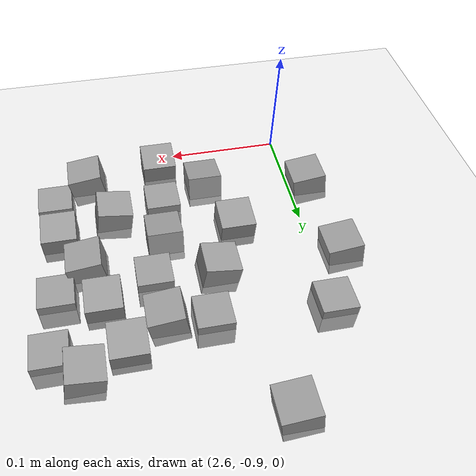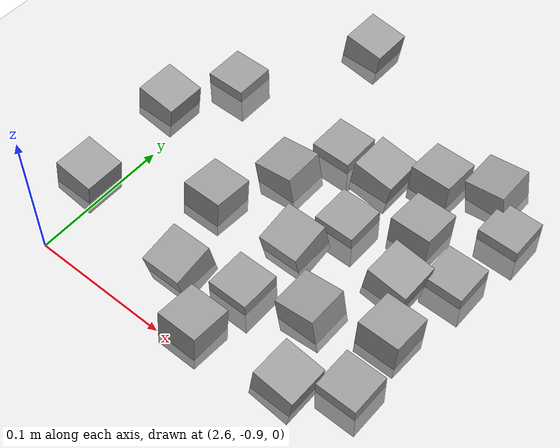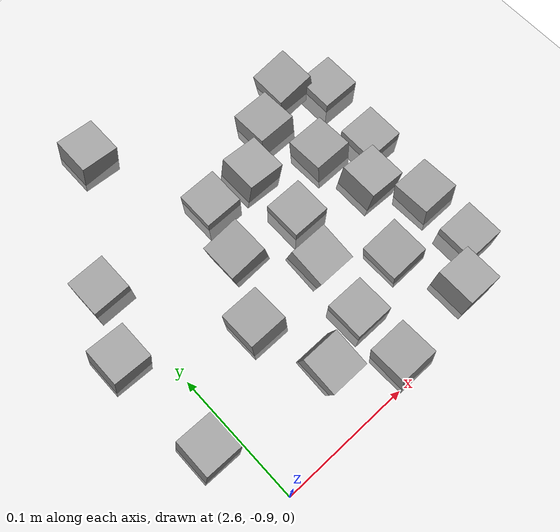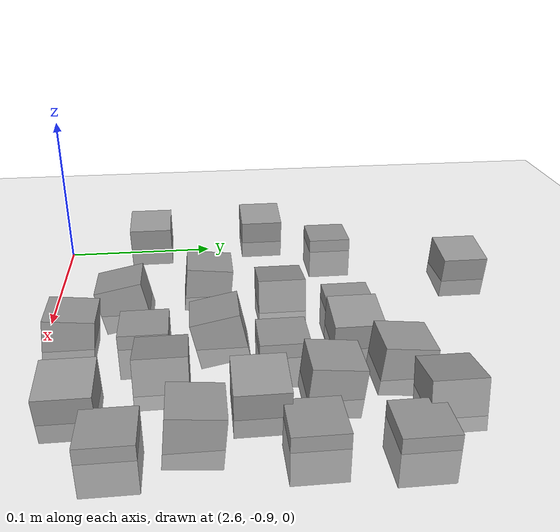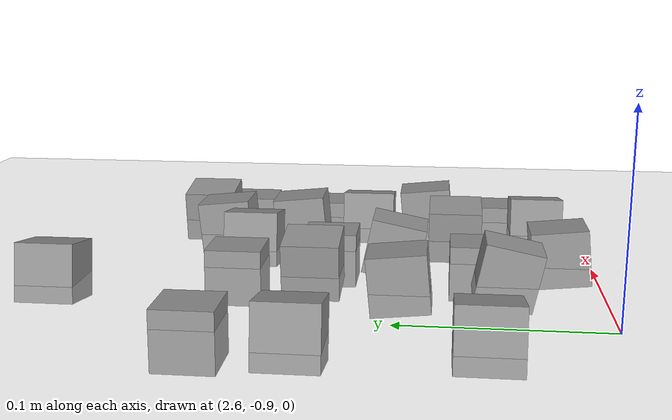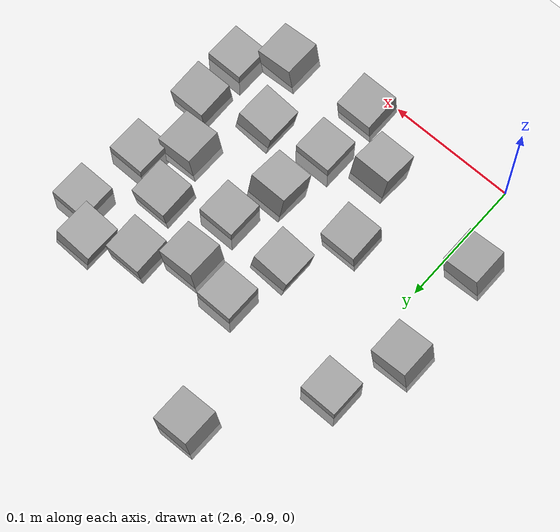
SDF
<sdf version="1.7">
 <world name="default">
  <model name="ground_plane">
   <static>1</static>
   <link name="link">
    <collision name="collision">
     <geometry><plane><normal>0 0 1</normal><size>100 100</size></plane></geometry>
     <surface><friction><ode><mu>100</mu><mu2>50</mu2></ode></friction></surface>
    </collision>
    <visual name="visual">
     <cast_shadows>0</cast_shadows>
     <geometry><plane><normal>0 0 1</normal><size>100 100</size></plane></geometry>
     <material>
      <script><uri>file://media/materials/scripts/gazebo.material</uri><name>Gazebo/Grey</name></script>
     </material>
    </visual>
   </link>
  </model>
  <model name="stone_road_6">
   <link name="link_0_clone_2_clone_2_clone_13_clone_clone_16_clone_19">
    <inertial>
     <mass>1</mass>
     <inertia>
      <ixx>0.166667</ixx>
      <ixy>0</ixy>
      <ixz>0</ixz>
      <iyy>0.166667</iyy>
      <iyz>0</iyz>
      <izz>0.166667</izz>
     </inertia>
    </inertial>
    <pose>0.219442 0.006622 -0.006222 0 -0 0</pose>
    <kinematic>1</kinematic>
    <visual name="visual">
     <geometry><box><size>0.03 0.03 0.03</size></box></geometry>
     <material>
      <lighting>1</lighting>
      <script><uri>file://media/materials/scripts/gazebo.material</uri><name>Gazebo/Grey</name></script>
      <shader type="pixel"><normal_map>__default__</normal_map></shader>
      <ambient>0.3 0.3 0.3 1</ambient>
      <diffuse>0.7 0.7 0.7 1</diffuse>
      <specular>0.01 0.01 0.01 1</specular>
      <emissive>0 0 0 1</emissive>
     </material>
    </visual>
    <collision name="collision">
     <geometry><box><size>0.03 0.03 0.03</size></box></geometry>
     <surface>
      <friction>
       <ode><mu>1</mu><mu2>1</mu2><fdir1>0 0 0</fdir1><slip1>0</slip1><slip2>0</slip2></ode>
       <torsional>
        <coefficient>1</coefficient>
        <patch_radius>0</patch_radius>
        <surface_radius>0</surface_radius>
        <use_patch_radius>1</use_patch_radius>
        <ode><slip>0</slip></ode>
       </torsional>
      </friction>
      <bounce><restitution_coefficient>0</restitution_coefficient><threshold>1e+06</threshold></bounce>
      <contact>
       <collide_without_contact>0</collide_without_contact>
       <collide_without_contact_bitmask>1</collide_without_contact_bitmask>
       <collide_bitmask>1</collide_bitmask>
       <ode>
        <soft_cfm>0</soft_cfm>
        <soft_erp>0.2</soft_erp>
        <kp>1e+13</kp>
        <kd>1</kd>
        <max_vel>0.01</max_vel>
        <min_depth>0</min_depth>
       </ode>
       <bullet>
        <split_impulse>1</split_impulse>
        <split_impulse_penetration_threshold>-0.01</split_impulse_penetration_threshold>
        <soft_cfm>0</soft_cfm>
        <soft_erp>0.2</soft_erp>
        <kp>1e+13</kp>
        <kd>1</kd>
       </bullet>
      </contact>
     </surface>
    </collision>
   </link>
   <link name="link_0_clone_2_clone_8">
    <inertial>
     <mass>1</mass>
     <inertia>
      <ixx>0.166667</ixx>
      <ixy>0</ixy>
      <ixz>0</ixz>
      <iyy>0.166667</iyy>
      <iyz>0</iyz>
      <izz>0.166667</izz>
     </inertia>
    </inertial>
    <pose>0.197388 -0.042712 0.003778 0 0.15 0</pose>
    <kinematic>1</kinematic>
    <visual name="visual">
     <geometry><box><size>0.03 0.03 0.03</size></box></geometry>
     <material>
      <lighting>1</lighting>
      <script><uri>file://media/materials/scripts/gazebo.material</uri><name>Gazebo/Grey</name></script>
      <shader type="pixel"><normal_map>__default__</normal_map></shader>
      <ambient>0.3 0.3 0.3 1</ambient>
      <diffuse>0.7 0.7 0.7 1</diffuse>
      <specular>0.01 0.01 0.01 1</specular>
      <emissive>0 0 0 1</emissive>
     </material>
    </visual>
    <collision name="collision">
     <geometry><box><size>0.03 0.03 0.03</size></box></geometry>
     <surface>
      <friction>
       <ode><mu>1</mu><mu2>1</mu2><fdir1>0 0 0</fdir1><slip1>0</slip1><slip2>0</slip2></ode>
       <torsional>
        <coefficient>1</coefficient>
        <patch_radius>0</patch_radius>
        <surface_radius>0</surface_radius>
        <use_patch_radius>1</use_patch_radius>
        <ode><slip>0</slip></ode>
       </torsional>
      </friction>
      <bounce><restitution_coefficient>0</restitution_coefficient><threshold>1e+06</threshold></bounce>
      <contact>
       <collide_without_contact>0</collide_without_contact>
       <collide_without_contact_bitmask>1</collide_without_contact_bitmask>
       <collide_bitmask>1</collide_bitmask>
       <ode>
        <soft_cfm>0</soft_cfm>
        <soft_erp>0.2</soft_erp>
        <kp>1e+13</kp>
        <kd>1</kd>
        <max_vel>0.01</max_vel>
        <min_depth>0</min_depth>
       </ode>
       <bullet>
        <split_impulse>1</split_impulse>
        <split_impulse_penetration_threshold>-0.01</split_impulse_penetration_threshold>
        <soft_cfm>0</soft_cfm>
        <soft_erp>0.2</soft_erp>
        <kp>1e+13</kp>
        <kd>1</kd>
       </bullet>
      </contact>
     </surface>
    </collision>
   </link>
   <static>0</static>
   <pose>2.379 -0.715905 -0 0 -0 0</pose>
  </model>
  <model name="stone_road_9">
   <link name="link_0_clone_2_clone_6">
    <inertial>
     <mass>1</mass>
     <inertia>
      <ixx>0.166667</ixx>
      <ixy>0</ixy>
      <ixz>0</ixz>
      <iyy>0.166667</iyy>
      <iyz>0</iyz>
      <izz>0.166667</izz>
     </inertia>
    </inertial>
    <pose>-0.087859 -0.263184 0.003778 0 0.15 0</pose>
    <kinematic>1</kinematic>
    <visual name="visual">
     <geometry><box><size>0.03 0.03 0.03</size></box></geometry>
     <material>
      <lighting>1</lighting>
      <script><uri>file://media/materials/scripts/gazebo.material</uri><name>Gazebo/Grey</name></script>
      <shader type="pixel"><normal_map>__default__</normal_map></shader>
      <ambient>0.3 0.3 0.3 1</ambient>
      <diffuse>0.7 0.7 0.7 1</diffuse>
      <specular>0.01 0.01 0.01 1</specular>
      <emissive>0 0 0 1</emissive>
     </material>
    </visual>
    <collision name="collision">
     <geometry><box><size>0.03 0.03 0.03</size></box></geometry>
     <surface>
      <friction>
       <ode><mu>1</mu><mu2>1</mu2><fdir1>0 0 0</fdir1><slip1>0</slip1><slip2>0</slip2></ode>
       <torsional>
        <coefficient>1</coefficient>
        <patch_radius>0</patch_radius>
        <surface_radius>0</surface_radius>
        <use_patch_radius>1</use_patch_radius>
        <ode><slip>0</slip></ode>
       </torsional>
      </friction>
      <bounce><restitution_coefficient>0</restitution_coefficient><threshold>1e+06</threshold></bounce>
      <contact>
       <collide_without_contact>0</collide_without_contact>
       <collide_without_contact_bitmask>1</collide_without_contact_bitmask>
       <collide_bitmask>1</collide_bitmask>
       <ode>
        <soft_cfm>0</soft_cfm>
        <soft_erp>0.2</soft_erp>
        <kp>1e+13</kp>
        <kd>1</kd>
        <max_vel>0.01</max_vel>
        <min_depth>0</min_depth>
       </ode>
       <bullet>
        <split_impulse>1</split_impulse>
        <split_impulse_penetration_threshold>-0.01</split_impulse_penetration_threshold>
        <soft_cfm>0</soft_cfm>
        <soft_erp>0.2</soft_erp>
        <kp>1e+13</kp>
        <kd>1</kd>
       </bullet>
      </contact>
     </surface>
    </collision>
   </link>
   <static>0</static>
   <pose>2.743 -0.362549 -0 0 -0 0</pose>
  </model>
  <model name="stone_road_12">
   <link name="link_0">
    <inertial>
     <mass>1</mass>
     <inertia>
      <ixx>0.166667</ixx>
      <ixy>0</ixy>
      <ixz>0</ixz>
      <iyy>0.166667</iyy>
      <iyz>0</iyz>
      <izz>0.166667</izz>
     </inertia>
    </inertial>
    <pose>-0.171827 0.03973 0.003778 0.2 -0 0</pose>
    <kinematic>1</kinematic>
    <visual name="visual">
     <geometry><box><size>0.03 0.03 0.03</size></box></geometry>
     <material>
      <lighting>1</lighting>
      <script><uri>file://media/materials/scripts/gazebo.material</uri><name>Gazebo/Grey</name></script>
      <shader type="pixel"><normal_map>__default__</normal_map></shader>
      <ambient>0.3 0.3 0.3 1</ambient>
      <diffuse>0.7 0.7 0.7 1</diffuse>
      <specular>0.01 0.01 0.01 1</specular>
      <emissive>0 0 0 1</emissive>
     </material>
    </visual>
    <collision name="collision">
     <geometry><box><size>0.03 0.03 0.03</size></box></geometry>
     <surface>
      <friction>
       <ode><mu>1</mu><mu2>1</mu2><fdir1>0 0 0</fdir1><slip1>0</slip1><slip2>0</slip2></ode>
       <torsional>
        <coefficient>1</coefficient>
        <patch_radius>0</patch_radius>
        <surface_radius>0</surface_radius>
        <use_patch_radius>1</use_patch_radius>
        <ode><slip>0</slip></ode>
       </torsional>
      </friction>
      <bounce><restitution_coefficient>0</restitution_coefficient><threshold>1e+06</threshold></bounce>
      <contact>
       <collide_without_contact>0</collide_without_contact>
       <collide_without_contact_bitmask>1</collide_without_contact_bitmask>
       <collide_bitmask>1</collide_bitmask>
       <ode>
        <soft_cfm>0</soft_cfm>
        <soft_erp>0.2</soft_erp>
        <kp>1e+13</kp>
        <kd>1</kd>
        <max_vel>0.01</max_vel>
        <min_depth>0</min_depth>
       </ode>
       <bullet>
        <split_impulse>1</split_impulse>
        <split_impulse_penetration_threshold>-0.01</split_impulse_penetration_threshold>
        <soft_cfm>0</soft_cfm>
        <soft_erp>0.2</soft_erp>
        <kp>1e+13</kp>
        <kd>1</kd>
       </bullet>
      </contact>
     </surface>
    </collision>
   </link>
   <link name="link_0_clone_2">
    <inertial>
     <mass>1</mass>
     <inertia>
      <ixx>0.166667</ixx>
      <ixy>0</ixy>
      <ixz>0</ixz>
      <iyy>0.166667</iyy>
      <iyz>0</iyz>
      <izz>0.166667</izz>
     </inertia>
    </inertial>
    <pose>-0.065685 0.018139 0.003778 0 0.15 0</pose>
    <kinematic>1</kinematic>
    <visual name="visual">
     <geometry><box><size>0.03 0.03 0.03</size></box></geometry>
     <material>
      <lighting>1</lighting>
      <script><uri>file://media/materials/scripts/gazebo.material</uri><name>Gazebo/Grey</name></script>
      <shader type="pixel"><normal_map>__default__</normal_map></shader>
      <ambient>0.3 0.3 0.3 1</ambient>
      <diffuse>0.7 0.7 0.7 1</diffuse>
      <specular>0.01 0.01 0.01 1</specular>
      <emissive>0 0 0 1</emissive>
     </material>
    </visual>
    <collision name="collision">
     <geometry><box><size>0.03 0.03 0.03</size></box></geometry>
     <surface>
      <friction>
       <ode><mu>1</mu><mu2>1</mu2><fdir1>0 0 0</fdir1><slip1>0</slip1><slip2>0</slip2></ode>
       <torsional>
        <coefficient>1</coefficient>
        <patch_radius>0</patch_radius>
        <surface_radius>0</surface_radius>
        <use_patch_radius>1</use_patch_radius>
        <ode><slip>0</slip></ode>
       </torsional>
      </friction>
      <bounce><restitution_coefficient>0</restitution_coefficient><threshold>1e+06</threshold></bounce>
      <contact>
       <collide_without_contact>0</collide_without_contact>
       <collide_without_contact_bitmask>1</collide_without_contact_bitmask>
       <collide_bitmask>1</collide_bitmask>
       <ode>
        <soft_cfm>0</soft_cfm>
        <soft_erp>0.2</soft_erp>
        <kp>1e+13</kp>
        <kd>1</kd>
        <max_vel>0.01</max_vel>
        <min_depth>0</min_depth>
       </ode>
       <bullet>
        <split_impulse>1</split_impulse>
        <split_impulse_penetration_threshold>-0.01</split_impulse_penetration_threshold>
        <soft_cfm>0</soft_cfm>
        <soft_erp>0.2</soft_erp>
        <kp>1e+13</kp>
        <kd>1</kd>
       </bullet>
      </contact>
     </surface>
    </collision>
   </link>
   <link name="link_0_clone_2_clone_2_clone_1">
    <inertial>
     <mass>1</mass>
     <inertia>
      <ixx>0.166667</ixx>
      <ixy>0</ixy>
      <ixz>0</ixz>
      <iyy>0.166667</iyy>
      <iyz>0</iyz>
      <izz>0.166667</izz>
     </inertia>
    </inertial>
    <pose>-0.085624 0.065625 0.003778 0 -0.15 0</pose>
    <kinematic>1</kinematic>
    <visual name="visual">
     <geometry><box><size>0.03 0.03 0.03</size></box></geometry>
     <material>
      <lighting>1</lighting>
      <script><uri>file://media/materials/scripts/gazebo.material</uri><name>Gazebo/Grey</name></script>
      <shader type="pixel"><normal_map>__default__</normal_map></shader>
      <ambient>0.3 0.3 0.3 1</ambient>
      <diffuse>0.7 0.7 0.7 1</diffuse>
      <specular>0.01 0.01 0.01 1</specular>
      <emissive>0 0 0 1</emissive>
     </material>
    </visual>
    <collision name="collision">
     <geometry><box><size>0.03 0.03 0.03</size></box></geometry>
     <surface>
      <friction>
       <ode><mu>1</mu><mu2>1</mu2><fdir1>0 0 0</fdir1><slip1>0</slip1><slip2>0</slip2></ode>
       <torsional>
        <coefficient>1</coefficient>
        <patch_radius>0</patch_radius>
        <surface_radius>0</surface_radius>
        <use_patch_radius>1</use_patch_radius>
        <ode><slip>0</slip></ode>
       </torsional>
      </friction>
      <bounce><restitution_coefficient>0</restitution_coefficient><threshold>1e+06</threshold></bounce>
      <contact>
       <collide_without_contact>0</collide_without_contact>
       <collide_without_contact_bitmask>1</collide_without_contact_bitmask>
       <collide_bitmask>1</collide_bitmask>
       <ode>
        <soft_cfm>0</soft_cfm>
        <soft_erp>0.2</soft_erp>
        <kp>1e+13</kp>
        <kd>1</kd>
        <max_vel>0.01</max_vel>
        <min_depth>0</min_depth>
       </ode>
       <bullet>
        <split_impulse>1</split_impulse>
        <split_impulse_penetration_threshold>-0.01</split_impulse_penetration_threshold>
        <soft_cfm>0</soft_cfm>
        <soft_erp>0.2</soft_erp>
        <kp>1e+13</kp>
        <kd>1</kd>
       </bullet>
      </contact>
     </surface>
    </collision>
   </link>
   <link name="link_0_clone_2_clone_2_clone_11">
    <inertial>
     <mass>1</mass>
     <inertia>
      <ixx>0.166667</ixx>
      <ixy>0</ixy>
      <ixz>0</ixz>
      <iyy>0.166667</iyy>
      <iyz>0</iyz>
      <izz>0.166667</izz>
     </inertia>
    </inertial>
    <pose>-0.050382 0.216558 0.003778 0 -0.15 0</pose>
    <kinematic>1</kinematic>
    <visual name="visual">
     <geometry><box><size>0.03 0.03 0.03</size></box></geometry>
     <material>
      <lighting>1</lighting>
      <script><uri>file://media/materials/scripts/gazebo.material</uri><name>Gazebo/Grey</name></script>
      <shader type="pixel"><normal_map>__default__</normal_map></shader>
      <ambient>0.3 0.3 0.3 1</ambient>
      <diffuse>0.7 0.7 0.7 1</diffuse>
      <specular>0.01 0.01 0.01 1</specular>
      <emissive>0 0 0 1</emissive>
     </material>
    </visual>
    <collision name="collision">
     <geometry><box><size>0.03 0.03 0.03</size></box></geometry>
     <surface>
      <friction>
       <ode><mu>1</mu><mu2>1</mu2><fdir1>0 0 0</fdir1><slip1>0</slip1><slip2>0</slip2></ode>
       <torsional>
        <coefficient>1</coefficient>
        <patch_radius>0</patch_radius>
        <surface_radius>0</surface_radius>
        <use_patch_radius>1</use_patch_radius>
        <ode><slip>0</slip></ode>
       </torsional>
      </friction>
      <bounce><restitution_coefficient>0</restitution_coefficient><threshold>1e+06</threshold></bounce>
      <contact>
       <collide_without_contact>0</collide_without_contact>
       <collide_without_contact_bitmask>1</collide_without_contact_bitmask>
       <collide_bitmask>1</collide_bitmask>
       <ode>
        <soft_cfm>0</soft_cfm>
        <soft_erp>0.2</soft_erp>
        <kp>1e+13</kp>
        <kd>1</kd>
        <max_vel>0.01</max_vel>
        <min_depth>0</min_depth>
       </ode>
       <bullet>
        <split_impulse>1</split_impulse>
        <split_impulse_penetration_threshold>-0.01</split_impulse_penetration_threshold>
        <soft_cfm>0</soft_cfm>
        <soft_erp>0.2</soft_erp>
        <kp>1e+13</kp>
        <kd>1</kd>
       </bullet>
      </contact>
     </surface>
    </collision>
   </link>
   <link name="link_0_clone_2_clone_2_clone_13_clone_clone_13">
    <inertial>
     <mass>1</mass>
     <inertia>
      <ixx>0.166667</ixx>
      <ixy>0</ixy>
      <ixz>0</ixz>
      <iyy>0.166667</iyy>
      <iyz>0</iyz>
      <izz>0.166667</izz>
     </inertia>
    </inertial>
    <pose>-0.069861 0.157394 0.003778 -0.1 0 0</pose>
    <kinematic>1</kinematic>
    <visual name="visual">
     <geometry><box><size>0.03 0.03 0.03</size></box></geometry>
     <material>
      <lighting>1</lighting>
      <script><uri>file://media/materials/scripts/gazebo.material</uri><name>Gazebo/Grey</name></script>
      <shader type="pixel"><normal_map>__default__</normal_map></shader>
      <ambient>0.3 0.3 0.3 1</ambient>
      <diffuse>0.7 0.7 0.7 1</diffuse>
      <specular>0.01 0.01 0.01 1</specular>
      <emissive>0 0 0 1</emissive>
     </material>
    </visual>
    <collision name="collision">
     <geometry><box><size>0.03 0.03 0.03</size></box></geometry>
     <surface>
      <friction>
       <ode><mu>1</mu><mu2>1</mu2><fdir1>0 0 0</fdir1><slip1>0</slip1><slip2>0</slip2></ode>
       <torsional>
        <coefficient>1</coefficient>
        <patch_radius>0</patch_radius>
        <surface_radius>0</surface_radius>
        <use_patch_radius>1</use_patch_radius>
        <ode><slip>0</slip></ode>
       </torsional>
      </friction>
      <bounce><restitution_coefficient>0</restitution_coefficient><threshold>1e+06</threshold></bounce>
      <contact>
       <collide_without_contact>0</collide_without_contact>
       <collide_without_contact_bitmask>1</collide_without_contact_bitmask>
       <collide_bitmask>1</collide_bitmask>
       <ode>
        <soft_cfm>0</soft_cfm>
        <soft_erp>0.2</soft_erp>
        <kp>1e+13</kp>
        <kd>1</kd>
        <max_vel>0.01</max_vel>
        <min_depth>0</min_depth>
       </ode>
       <bullet>
        <split_impulse>1</split_impulse>
        <split_impulse_penetration_threshold>-0.01</split_impulse_penetration_threshold>
        <soft_cfm>0</soft_cfm>
        <soft_erp>0.2</soft_erp>
        <kp>1e+13</kp>
        <kd>1</kd>
       </bullet>
      </contact>
     </surface>
    </collision>
   </link>
   <link name="link_0_clone_2_clone_2_clone_13_clone_clone_14">
    <inertial>
     <mass>1</mass>
     <inertia>
      <ixx>0.166667</ixx>
      <ixy>0</ixy>
      <ixz>0</ixz>
      <iyy>0.166667</iyy>
      <iyz>0</iyz>
      <izz>0.166667</izz>
     </inertia>
    </inertial>
    <pose>-0.190578 0.093923 0.003778 -0.1 0 0</pose>
    <kinematic>1</kinematic>
    <visual name="visual">
     <geometry><box><size>0.03 0.03 0.03</size></box></geometry>
     <material>
      <lighting>1</lighting>
      <script><uri>file://media/materials/scripts/gazebo.material</uri><name>Gazebo/Grey</name></script>
      <shader type="pixel"><normal_map>__default__</normal_map></shader>
      <ambient>0.3 0.3 0.3 1</ambient>
      <diffuse>0.7 0.7 0.7 1</diffuse>
      <specular>0.01 0.01 0.01 1</specular>
      <emissive>0 0 0 1</emissive>
     </material>
    </visual>
    <collision name="collision">
     <geometry><box><size>0.03 0.03 0.03</size></box></geometry>
     <surface>
      <friction>
       <ode><mu>1</mu><mu2>1</mu2><fdir1>0 0 0</fdir1><slip1>0</slip1><slip2>0</slip2></ode>
       <torsional>
        <coefficient>1</coefficient>
        <patch_radius>0</patch_radius>
        <surface_radius>0</surface_radius>
        <use_patch_radius>1</use_patch_radius>
        <ode><slip>0</slip></ode>
       </torsional>
      </friction>
      <bounce><restitution_coefficient>0</restitution_coefficient><threshold>1e+06</threshold></bounce>
      <contact>
       <collide_without_contact>0</collide_without_contact>
       <collide_without_contact_bitmask>1</collide_without_contact_bitmask>
       <collide_bitmask>1</collide_bitmask>
       <ode>
        <soft_cfm>0</soft_cfm>
        <soft_erp>0.2</soft_erp>
        <kp>1e+13</kp>
        <kd>1</kd>
        <max_vel>0.01</max_vel>
        <min_depth>0</min_depth>
       </ode>
       <bullet>
        <split_impulse>1</split_impulse>
        <split_impulse_penetration_threshold>-0.01</split_impulse_penetration_threshold>
        <soft_cfm>0</soft_cfm>
        <soft_erp>0.2</soft_erp>
        <kp>1e+13</kp>
        <kd>1</kd>
       </bullet>
      </contact>
     </surface>
    </collision>
   </link>
   <link name="link_0_clone_2_clone_2_clone_13_clone_clone_15">
    <inertial>
     <mass>1</mass>
     <inertia>
      <ixx>0.166667</ixx>
      <ixy>0</ixy>
      <ixz>0</ixz>
      <iyy>0.166667</iyy>
      <iyz>0</iyz>
      <izz>0.166667</izz>
     </inertia>
    </inertial>
    <pose>-0.084893 0.19984 0.003778 -0.1 0 0</pose>
    <kinematic>1</kinematic>
    <visual name="visual">
     <geometry><box><size>0.03 0.03 0.03</size></box></geometry>
     <material>
      <lighting>1</lighting>
      <script><uri>file://media/materials/scripts/gazebo.material</uri><name>Gazebo/Grey</name></script>
      <shader type="pixel"><normal_map>__default__</normal_map></shader>
      <ambient>0.3 0.3 0.3 1</ambient>
      <diffuse>0.7 0.7 0.7 1</diffuse>
      <specular>0.01 0.01 0.01 1</specular>
      <emissive>0 0 0 1</emissive>
     </material>
    </visual>
    <collision name="collision">
     <geometry><box><size>0.03 0.03 0.03</size></box></geometry>
     <surface>
      <friction>
       <ode><mu>1</mu><mu2>1</mu2><fdir1>0 0 0</fdir1><slip1>0</slip1><slip2>0</slip2></ode>
       <torsional>
        <coefficient>1</coefficient>
        <patch_radius>0</patch_radius>
        <surface_radius>0</surface_radius>
        <use_patch_radius>1</use_patch_radius>
        <ode><slip>0</slip></ode>
       </torsional>
      </friction>
      <bounce><restitution_coefficient>0</restitution_coefficient><threshold>1e+06</threshold></bounce>
      <contact>
       <collide_without_contact>0</collide_without_contact>
       <collide_without_contact_bitmask>1</collide_without_contact_bitmask>
       <collide_bitmask>1</collide_bitmask>
       <ode>
        <soft_cfm>0</soft_cfm>
        <soft_erp>0.2</soft_erp>
        <kp>1e+13</kp>
        <kd>1</kd>
        <max_vel>0.01</max_vel>
        <min_depth>0</min_depth>
       </ode>
       <bullet>
        <split_impulse>1</split_impulse>
        <split_impulse_penetration_threshold>-0.01</split_impulse_penetration_threshold>
        <soft_cfm>0</soft_cfm>
        <soft_erp>0.2</soft_erp>
        <kp>1e+13</kp>
        <kd>1</kd>
       </bullet>
      </contact>
     </surface>
    </collision>
   </link>
   <link name="link_0_clone_2_clone_2_clone_13_clone_clone_16_clone_2">
    <inertial>
     <mass>1</mass>
     <inertia>
      <ixx>0.166667</ixx>
      <ixy>0</ixy>
      <ixz>0</ixz>
      <iyy>0.166667</iyy>
      <iyz>0</iyz>
      <izz>0.166667</izz>
     </inertia>
    </inertial>
    <pose>-0.035128 0.040728 -0.006222 0 -0 0</pose>
    <kinematic>1</kinematic>
    <visual name="visual">
     <geometry><box><size>0.03 0.03 0.03</size></box></geometry>
     <material>
      <lighting>1</lighting>
      <script><uri>file://media/materials/scripts/gazebo.material</uri><name>Gazebo/Grey</name></script>
      <shader type="pixel"><normal_map>__default__</normal_map></shader>
      <ambient>0.3 0.3 0.3 1</ambient>
      <diffuse>0.7 0.7 0.7 1</diffuse>
      <specular>0.01 0.01 0.01 1</specular>
      <emissive>0 0 0 1</emissive>
     </material>
    </visual>
    <collision name="collision">
     <geometry><box><size>0.03 0.03 0.03</size></box></geometry>
     <surface>
      <friction>
       <ode><mu>1</mu><mu2>1</mu2><fdir1>0 0 0</fdir1><slip1>0</slip1><slip2>0</slip2></ode>
       <torsional>
        <coefficient>1</coefficient>
        <patch_radius>0</patch_radius>
        <surface_radius>0</surface_radius>
        <use_patch_radius>1</use_patch_radius>
        <ode><slip>0</slip></ode>
       </torsional>
      </friction>
      <bounce><restitution_coefficient>0</restitution_coefficient><threshold>1e+06</threshold></bounce>
      <contact>
       <collide_without_contact>0</collide_without_contact>
       <collide_without_contact_bitmask>1</collide_without_contact_bitmask>
       <collide_bitmask>1</collide_bitmask>
       <ode>
        <soft_cfm>0</soft_cfm>
        <soft_erp>0.2</soft_erp>
        <kp>1e+13</kp>
        <kd>1</kd>
        <max_vel>0.01</max_vel>
        <min_depth>0</min_depth>
       </ode>
       <bullet>
        <split_impulse>1</split_impulse>
        <split_impulse_penetration_threshold>-0.01</split_impulse_penetration_threshold>
        <soft_cfm>0</soft_cfm>
        <soft_erp>0.2</soft_erp>
        <kp>1e+13</kp>
        <kd>1</kd>
       </bullet>
      </contact>
     </surface>
    </collision>
   </link>
   <link name="link_0_clone_2_clone_2_clone_13_clone_clone_16_clone_21">
    <inertial>
     <mass>1</mass>
     <inertia>
      <ixx>0.166667</ixx>
      <ixy>0</ixy>
      <ixz>0</ixz>
      <iyy>0.166667</iyy>
      <iyz>0</iyz>
      <izz>0.166667</izz>
     </inertia>
    </inertial>
    <pose>-0.032398 0.142589 -0.006222 0 -0 0</pose>
    <kinematic>1</kinematic>
    <visual name="visual">
     <geometry><box><size>0.03 0.03 0.03</size></box></geometry>
     <material>
      <lighting>1</lighting>
      <script><uri>file://media/materials/scripts/gazebo.material</uri><name>Gazebo/Grey</name></script>
      <shader type="pixel"><normal_map>__default__</normal_map></shader>
      <ambient>0.3 0.3 0.3 1</ambient>
      <diffuse>0.7 0.7 0.7 1</diffuse>
      <specular>0.01 0.01 0.01 1</specular>
      <emissive>0 0 0 1</emissive>
     </material>
    </visual>
    <collision name="collision">
     <geometry><box><size>0.03 0.03 0.03</size></box></geometry>
     <surface>
      <friction>
       <ode><mu>1</mu><mu2>1</mu2><fdir1>0 0 0</fdir1><slip1>0</slip1><slip2>0</slip2></ode>
       <torsional>
        <coefficient>1</coefficient>
        <patch_radius>0</patch_radius>
        <surface_radius>0</surface_radius>
        <use_patch_radius>1</use_patch_radius>
        <ode><slip>0</slip></ode>
       </torsional>
      </friction>
      <bounce><restitution_coefficient>0</restitution_coefficient><threshold>1e+06</threshold></bounce>
      <contact>
       <collide_without_contact>0</collide_without_contact>
       <collide_without_contact_bitmask>1</collide_without_contact_bitmask>
       <collide_bitmask>1</collide_bitmask>
       <ode>
        <soft_cfm>0</soft_cfm>
        <soft_erp>0.2</soft_erp>
        <kp>1e+13</kp>
        <kd>1</kd>
        <max_vel>0.01</max_vel>
        <min_depth>0</min_depth>
       </ode>
       <bullet>
        <split_impulse>1</split_impulse>
        <split_impulse_penetration_threshold>-0.01</split_impulse_penetration_threshold>
        <soft_cfm>0</soft_cfm>
        <soft_erp>0.2</soft_erp>
        <kp>1e+13</kp>
        <kd>1</kd>
       </bullet>
      </contact>
     </surface>
    </collision>
   </link>
   <link name="link_0_clone_2_clone_2_clone_13_clone_clone_16_clone_22">
    <inertial>
     <mass>1</mass>
     <inertia>
      <ixx>0.166667</ixx>
      <ixy>0</ixy>
      <ixz>0</ixz>
      <iyy>0.166667</iyy>
      <iyz>0</iyz>
      <izz>0.166667</izz>
     </inertia>
    </inertial>
    <pose>-0.025872 0.194724 -0.006222 0 -0 0</pose>
    <kinematic>1</kinematic>
    <visual name="visual">
     <geometry><box><size>0.03 0.03 0.03</size></box></geometry>
     <material>
      <lighting>1</lighting>
      <script><uri>file://media/materials/scripts/gazebo.material</uri><name>Gazebo/Grey</name></script>
      <shader type="pixel"><normal_map>__default__</normal_map></shader>
      <ambient>0.3 0.3 0.3 1</ambient>
      <diffuse>0.7 0.7 0.7 1</diffuse>
      <specular>0.01 0.01 0.01 1</specular>
      <emissive>0 0 0 1</emissive>
     </material>
    </visual>
    <collision name="collision">
     <geometry><box><size>0.03 0.03 0.03</size></box></geometry>
     <surface>
      <friction>
       <ode><mu>1</mu><mu2>1</mu2><fdir1>0 0 0</fdir1><slip1>0</slip1><slip2>0</slip2></ode>
       <torsional>
        <coefficient>1</coefficient>
        <patch_radius>0</patch_radius>
        <surface_radius>0</surface_radius>
        <use_patch_radius>1</use_patch_radius>
        <ode><slip>0</slip></ode>
       </torsional>
      </friction>
      <bounce><restitution_coefficient>0</restitution_coefficient><threshold>1e+06</threshold></bounce>
      <contact>
       <collide_without_contact>0</collide_without_contact>
       <collide_without_contact_bitmask>1</collide_without_contact_bitmask>
       <collide_bitmask>1</collide_bitmask>
       <ode>
        <soft_cfm>0</soft_cfm>
        <soft_erp>0.2</soft_erp>
        <kp>1e+13</kp>
        <kd>1</kd>
        <max_vel>0.01</max_vel>
        <min_depth>0</min_depth>
       </ode>
       <bullet>
        <split_impulse>1</split_impulse>
        <split_impulse_penetration_threshold>-0.01</split_impulse_penetration_threshold>
        <soft_cfm>0</soft_cfm>
        <soft_erp>0.2</soft_erp>
        <kp>1e+13</kp>
        <kd>1</kd>
       </bullet>
      </contact>
     </surface>
    </collision>
   </link>
   <link name="link_0_clone_2_clone_2_clone_13_clone_clone_16_clone_25">
    <inertial>
     <mass>1</mass>
     <inertia>
      <ixx>0.166667</ixx>
      <ixy>0</ixy>
      <ixz>0</ixz>
      <iyy>0.166667</iyy>
      <iyz>0</iyz>
      <izz>0.166667</izz>
     </inertia>
    </inertial>
    <pose>-0.15326 0.182661 -0.006222 0 -0 0</pose>
    <kinematic>1</kinematic>
    <visual name="visual">
     <geometry><box><size>0.03 0.03 0.03</size></box></geometry>
     <material>
      <lighting>1</lighting>
      <script><uri>file://media/materials/scripts/gazebo.material</uri><name>Gazebo/Grey</name></script>
      <shader type="pixel"><normal_map>__default__</normal_map></shader>
      <ambient>0.3 0.3 0.3 1</ambient>
      <diffuse>0.7 0.7 0.7 1</diffuse>
      <specular>0.01 0.01 0.01 1</specular>
      <emissive>0 0 0 1</emissive>
     </material>
    </visual>
    <collision name="collision">
     <geometry><box><size>0.03 0.03 0.03</size></box></geometry>
     <surface>
      <friction>
       <ode><mu>1</mu><mu2>1</mu2><fdir1>0 0 0</fdir1><slip1>0</slip1><slip2>0</slip2></ode>
       <torsional>
        <coefficient>1</coefficient>
        <patch_radius>0</patch_radius>
        <surface_radius>0</surface_radius>
        <use_patch_radius>1</use_patch_radius>
        <ode><slip>0</slip></ode>
       </torsional>
      </friction>
      <bounce><restitution_coefficient>0</restitution_coefficient><threshold>1e+06</threshold></bounce>
      <contact>
       <collide_without_contact>0</collide_without_contact>
       <collide_without_contact_bitmask>1</collide_without_contact_bitmask>
       <collide_bitmask>1</collide_bitmask>
       <ode>
        <soft_cfm>0</soft_cfm>
        <soft_erp>0.2</soft_erp>
        <kp>1e+13</kp>
        <kd>1</kd>
        <max_vel>0.01</max_vel>
        <min_depth>0</min_depth>
       </ode>
       <bullet>
        <split_impulse>1</split_impulse>
        <split_impulse_penetration_threshold>-0.01</split_impulse_penetration_threshold>
        <soft_cfm>0</soft_cfm>
        <soft_erp>0.2</soft_erp>
        <kp>1e+13</kp>
        <kd>1</kd>
       </bullet>
      </contact>
     </surface>
    </collision>
   </link>
   <link name="link_0_clone_2_clone_2_clone_13_clone_clone_16_clone_3">
    <inertial>
     <mass>1</mass>
     <inertia>
      <ixx>0.166667</ixx>
      <ixy>0</ixy>
      <ixz>0</ixz>
      <iyy>0.166667</iyy>
      <iyz>0</iyz>
      <izz>0.166667</izz>
     </inertia>
    </inertial>
    <pose>-0.112739 0.135576 -0.006222 0 -0 0</pose>
    <kinematic>1</kinematic>
    <visual name="visual">
     <geometry><box><size>0.03 0.03 0.03</size></box></geometry>
     <material>
      <lighting>1</lighting>
      <script><uri>file://media/materials/scripts/gazebo.material</uri><name>Gazebo/Grey</name></script>
      <shader type="pixel"><normal_map>__default__</normal_map></shader>
      <ambient>0.3 0.3 0.3 1</ambient>
      <diffuse>0.7 0.7 0.7 1</diffuse>
      <specular>0.01 0.01 0.01 1</specular>
      <emissive>0 0 0 1</emissive>
     </material>
    </visual>
    <collision name="collision">
     <geometry><box><size>0.03 0.03 0.03</size></box></geometry>
     <surface>
      <friction>
       <ode><mu>1</mu><mu2>1</mu2><fdir1>0 0 0</fdir1><slip1>0</slip1><slip2>0</slip2></ode>
       <torsional>
        <coefficient>1</coefficient>
        <patch_radius>0</patch_radius>
        <surface_radius>0</surface_radius>
        <use_patch_radius>1</use_patch_radius>
        <ode><slip>0</slip></ode>
       </torsional>
      </friction>
      <bounce><restitution_coefficient>0</restitution_coefficient><threshold>1e+06</threshold></bounce>
      <contact>
       <collide_without_contact>0</collide_without_contact>
       <collide_without_contact_bitmask>1</collide_without_contact_bitmask>
       <collide_bitmask>1</collide_bitmask>
       <ode>
        <soft_cfm>0</soft_cfm>
        <soft_erp>0.2</soft_erp>
        <kp>1e+13</kp>
        <kd>1</kd>
        <max_vel>0.01</max_vel>
        <min_depth>0</min_depth>
       </ode>
       <bullet>
        <split_impulse>1</split_impulse>
        <split_impulse_penetration_threshold>-0.01</split_impulse_penetration_threshold>
        <soft_cfm>0</soft_cfm>
        <soft_erp>0.2</soft_erp>
        <kp>1e+13</kp>
        <kd>1</kd>
       </bullet>
      </contact>
     </surface>
    </collision>
   </link>
   <link name="link_0_clone_2_clone_2_clone_13_clone_clone_16_clone_4">
    <inertial>
     <mass>1</mass>
     <inertia>
      <ixx>0.166667</ixx>
      <ixy>0</ixy>
      <ixz>0</ixz>
      <iyy>0.166667</iyy>
      <iyz>0</iyz>
      <izz>0.166667</izz>
     </inertia>
    </inertial>
    <pose>-0.131411 0.053677 -0.006222 0 -0 0</pose>
    <kinematic>1</kinematic>
    <visual name="visual">
     <geometry><box><size>0.03 0.03 0.03</size></box></geometry>
     <material>
      <lighting>1</lighting>
      <script><uri>file://media/materials/scripts/gazebo.material</uri><name>Gazebo/Grey</name></script>
      <shader type="pixel"><normal_map>__default__</normal_map></shader>
      <ambient>0.3 0.3 0.3 1</ambient>
      <diffuse>0.7 0.7 0.7 1</diffuse>
      <specular>0.01 0.01 0.01 1</specular>
      <emissive>0 0 0 1</emissive>
     </material>
    </visual>
    <collision name="collision">
     <geometry><box><size>0.03 0.03 0.03</size></box></geometry>
     <surface>
      <friction>
       <ode><mu>1</mu><mu2>1</mu2><fdir1>0 0 0</fdir1><slip1>0</slip1><slip2>0</slip2></ode>
       <torsional>
        <coefficient>1</coefficient>
        <patch_radius>0</patch_radius>
        <surface_radius>0</surface_radius>
        <use_patch_radius>1</use_patch_radius>
        <ode><slip>0</slip></ode>
       </torsional>
      </friction>
      <bounce><restitution_coefficient>0</restitution_coefficient><threshold>1e+06</threshold></bounce>
      <contact>
       <collide_without_contact>0</collide_without_contact>
       <collide_without_contact_bitmask>1</collide_without_contact_bitmask>
       <collide_bitmask>1</collide_bitmask>
       <ode>
        <soft_cfm>0</soft_cfm>
        <soft_erp>0.2</soft_erp>
        <kp>1e+13</kp>
        <kd>1</kd>
        <max_vel>0.01</max_vel>
        <min_depth>0</min_depth>
       </ode>
       <bullet>
        <split_impulse>1</split_impulse>
        <split_impulse_penetration_threshold>-0.01</split_impulse_penetration_threshold>
        <soft_cfm>0</soft_cfm>
        <soft_erp>0.2</soft_erp>
        <kp>1e+13</kp>
        <kd>1</kd>
       </bullet>
      </contact>
     </surface>
    </collision>
   </link>
   <link name="link_0_clone_2_clone_2_clone_13_clone_clone_2">
    <inertial>
     <mass>1</mass>
     <inertia>
      <ixx>0.166667</ixx>
      <ixy>0</ixy>
      <ixz>0</ixz>
      <iyy>0.166667</iyy>
      <iyz>0</iyz>
      <izz>0.166667</izz>
     </inertia>
    </inertial>
    <pose>-0.037997 0.082571 0.003778 -0.1 0 0</pose>
    <kinematic>1</kinematic>
    <visual name="visual">
     <geometry><box><size>0.03 0.03 0.03</size></box></geometry>
     <material>
      <lighting>1</lighting>
      <script><uri>file://media/materials/scripts/gazebo.material</uri><name>Gazebo/Grey</name></script>
      <shader type="pixel"><normal_map>__default__</normal_map></shader>
      <ambient>0.3 0.3 0.3 1</ambient>
      <diffuse>0.7 0.7 0.7 1</diffuse>
      <specular>0.01 0.01 0.01 1</specular>
      <emissive>0 0 0 1</emissive>
     </material>
    </visual>
    <collision name="collision">
     <geometry><box><size>0.03 0.03 0.03</size></box></geometry>
     <surface>
      <friction>
       <ode><mu>1</mu><mu2>1</mu2><fdir1>0 0 0</fdir1><slip1>0</slip1><slip2>0</slip2></ode>
       <torsional>
        <coefficient>1</coefficient>
        <patch_radius>0</patch_radius>
        <surface_radius>0</surface_radius>
        <use_patch_radius>1</use_patch_radius>
        <ode><slip>0</slip></ode>
       </torsional>
      </friction>
      <bounce><restitution_coefficient>0</restitution_coefficient><threshold>1e+06</threshold></bounce>
      <contact>
       <collide_without_contact>0</collide_without_contact>
       <collide_without_contact_bitmask>1</collide_without_contact_bitmask>
       <collide_bitmask>1</collide_bitmask>
       <ode>
        <soft_cfm>0</soft_cfm>
        <soft_erp>0.2</soft_erp>
        <kp>1e+13</kp>
        <kd>1</kd>
        <max_vel>0.01</max_vel>
        <min_depth>0</min_depth>
       </ode>
       <bullet>
        <split_impulse>1</split_impulse>
        <split_impulse_penetration_threshold>-0.01</split_impulse_penetration_threshold>
        <soft_cfm>0</soft_cfm>
        <soft_erp>0.2</soft_erp>
        <kp>1e+13</kp>
        <kd>1</kd>
       </bullet>
      </contact>
     </surface>
    </collision>
   </link>
   <link name="link_0_clone_2_clone_2_clone_13_clone_clone_7">
    <inertial>
     <mass>1</mass>
     <inertia>
      <ixx>0.166667</ixx>
      <ixy>0</ixy>
      <ixz>0</ixz>
      <iyy>0.166667</iyy>
      <iyz>0</iyz>
      <izz>0.166667</izz>
     </inertia>
    </inertial>
    <pose>-0.133876 0.010561 0.003778 -0.1 0 0</pose>
    <kinematic>1</kinematic>
    <visual name="visual">
     <geometry><box><size>0.03 0.03 0.03</size></box></geometry>
     <material>
      <lighting>1</lighting>
      <script><uri>file://media/materials/scripts/gazebo.material</uri><name>Gazebo/Grey</name></script>
      <shader type="pixel"><normal_map>__default__</normal_map></shader>
      <ambient>0.3 0.3 0.3 1</ambient>
      <diffuse>0.7 0.7 0.7 1</diffuse>
      <specular>0.01 0.01 0.01 1</specular>
      <emissive>0 0 0 1</emissive>
     </material>
    </visual>
    <collision name="collision">
     <geometry><box><size>0.03 0.03 0.03</size></box></geometry>
     <surface>
      <friction>
       <ode><mu>1</mu><mu2>1</mu2><fdir1>0 0 0</fdir1><slip1>0</slip1><slip2>0</slip2></ode>
       <torsional>
        <coefficient>1</coefficient>
        <patch_radius>0</patch_radius>
        <surface_radius>0</surface_radius>
        <use_patch_radius>1</use_patch_radius>
        <ode><slip>0</slip></ode>
       </torsional>
      </friction>
      <bounce><restitution_coefficient>0</restitution_coefficient><threshold>1e+06</threshold></bounce>
      <contact>
       <collide_without_contact>0</collide_without_contact>
       <collide_without_contact_bitmask>1</collide_without_contact_bitmask>
       <collide_bitmask>1</collide_bitmask>
       <ode>
        <soft_cfm>0</soft_cfm>
        <soft_erp>0.2</soft_erp>
        <kp>1e+13</kp>
        <kd>1</kd>
        <max_vel>0.01</max_vel>
        <min_depth>0</min_depth>
       </ode>
       <bullet>
        <split_impulse>1</split_impulse>
        <split_impulse_penetration_threshold>-0.01</split_impulse_penetration_threshold>
        <soft_cfm>0</soft_cfm>
        <soft_erp>0.2</soft_erp>
        <kp>1e+13</kp>
        <kd>1</kd>
       </bullet>
      </contact>
     </surface>
    </collision>
   </link>
   <link name="link_0_clone_2_clone_2_clone_2">
    <inertial>
     <mass>1</mass>
     <inertia>
      <ixx>0.166667</ixx>
      <ixy>0</ixy>
      <ixz>0</ixz>
      <iyy>0.166667</iyy>
      <iyz>0</iyz>
      <izz>0.166667</izz>
     </inertia>
    </inertial>
    <pose>-0.166079 0.139989 0.003778 0 -0.15 0</pose>
    <kinematic>1</kinematic>
    <visual name="visual">
     <geometry><box><size>0.03 0.03 0.03</size></box></geometry>
     <material>
      <lighting>1</lighting>
      <script><uri>file://media/materials/scripts/gazebo.material</uri><name>Gazebo/Grey</name></script>
      <shader type="pixel"><normal_map>__default__</normal_map></shader>
      <ambient>0.3 0.3 0.3 1</ambient>
      <diffuse>0.7 0.7 0.7 1</diffuse>
      <specular>0.01 0.01 0.01 1</specular>
      <emissive>0 0 0 1</emissive>
     </material>
    </visual>
    <collision name="collision">
     <geometry><box><size>0.03 0.03 0.03</size></box></geometry>
     <surface>
      <friction>
       <ode><mu>1</mu><mu2>1</mu2><fdir1>0 0 0</fdir1><slip1>0</slip1><slip2>0</slip2></ode>
       <torsional>
        <coefficient>1</coefficient>
        <patch_radius>0</patch_radius>
        <surface_radius>0</surface_radius>
        <use_patch_radius>1</use_patch_radius>
        <ode><slip>0</slip></ode>
       </torsional>
      </friction>
      <bounce><restitution_coefficient>0</restitution_coefficient><threshold>1e+06</threshold></bounce>
      <contact>
       <collide_without_contact>0</collide_without_contact>
       <collide_without_contact_bitmask>1</collide_without_contact_bitmask>
       <collide_bitmask>1</collide_bitmask>
       <ode>
        <soft_cfm>0</soft_cfm>
        <soft_erp>0.2</soft_erp>
        <kp>1e+13</kp>
        <kd>1</kd>
        <max_vel>0.01</max_vel>
        <min_depth>0</min_depth>
       </ode>
       <bullet>
        <split_impulse>1</split_impulse>
        <split_impulse_penetration_threshold>-0.01</split_impulse_penetration_threshold>
        <soft_cfm>0</soft_cfm>
        <soft_erp>0.2</soft_erp>
        <kp>1e+13</kp>
        <kd>1</kd>
       </bullet>
      </contact>
     </surface>
    </collision>
   </link>
   <link name="link_0_clone_2_clone_3">
    <inertial>
     <mass>1</mass>
     <inertia>
      <ixx>0.166667</ixx>
      <ixy>0</ixy>
      <ixz>0</ixz>
      <iyy>0.166667</iyy>
      <iyz>0</iyz>
      <izz>0.166667</izz>
     </inertia>
    </inertial>
    <pose>-0.058921 0.117271 0.003778 0 0.15 0</pose>
    <kinematic>1</kinematic>
    <visual name="visual">
     <geometry><box><size>0.03 0.03 0.03</size></box></geometry>
     <material>
      <lighting>1</lighting>
      <script><uri>file://media/materials/scripts/gazebo.material</uri><name>Gazebo/Grey</name></script>
      <shader type="pixel"><normal_map>__default__</normal_map></shader>
      <ambient>0.3 0.3 0.3 1</ambient>
      <diffuse>0.7 0.7 0.7 1</diffuse>
      <specular>0.01 0.01 0.01 1</specular>
      <emissive>0 0 0 1</emissive>
     </material>
    </visual>
    <collision name="collision">
     <geometry><box><size>0.03 0.03 0.03</size></box></geometry>
     <surface>
      <friction>
       <ode><mu>1</mu><mu2>1</mu2><fdir1>0 0 0</fdir1><slip1>0</slip1><slip2>0</slip2></ode>
       <torsional>
        <coefficient>1</coefficient>
        <patch_radius>0</patch_radius>
        <surface_radius>0</surface_radius>
        <use_patch_radius>1</use_patch_radius>
        <ode><slip>0</slip></ode>
       </torsional>
      </friction>
      <bounce><restitution_coefficient>0</restitution_coefficient><threshold>1e+06</threshold></bounce>
      <contact>
       <collide_without_contact>0</collide_without_contact>
       <collide_without_contact_bitmask>1</collide_without_contact_bitmask>
       <collide_bitmask>1</collide_bitmask>
       <ode>
        <soft_cfm>0</soft_cfm>
        <soft_erp>0.2</soft_erp>
        <kp>1e+13</kp>
        <kd>1</kd>
        <max_vel>0.01</max_vel>
        <min_depth>0</min_depth>
       </ode>
       <bullet>
        <split_impulse>1</split_impulse>
        <split_impulse_penetration_threshold>-0.01</split_impulse_penetration_threshold>
        <soft_cfm>0</soft_cfm>
        <soft_erp>0.2</soft_erp>
        <kp>1e+13</kp>
        <kd>1</kd>
       </bullet>
      </contact>
     </surface>
    </collision>
   </link>
   <link name="link_0_clone_2_clone_4">
    <inertial>
     <mass>1</mass>
     <inertia>
      <ixx>0.166667</ixx>
      <ixy>0</ixy>
      <ixz>0</ixz>
      <iyy>0.166667</iyy>
      <iyz>0</iyz>
      <izz>0.166667</izz>
     </inertia>
    </inertial>
    <pose>-0.117313 0.179399 0.003778 0 0.15 0</pose>
    <kinematic>1</kinematic>
    <visual name="visual">
     <geometry><box><size>0.03 0.03 0.03</size></box></geometry>
     <material>
      <lighting>1</lighting>
      <script><uri>file://media/materials/scripts/gazebo.material</uri><name>Gazebo/Grey</name></script>
      <shader type="pixel"><normal_map>__default__</normal_map></shader>
      <ambient>0.3 0.3 0.3 1</ambient>
      <diffuse>0.7 0.7 0.7 1</diffuse>
      <specular>0.01 0.01 0.01 1</specular>
      <emissive>0 0 0 1</emissive>
     </material>
    </visual>
    <collision name="collision">
     <geometry><box><size>0.03 0.03 0.03</size></box></geometry>
     <surface>
      <friction>
       <ode><mu>1</mu><mu2>1</mu2><fdir1>0 0 0</fdir1><slip1>0</slip1><slip2>0</slip2></ode>
       <torsional>
        <coefficient>1</coefficient>
        <patch_radius>0</patch_radius>
        <surface_radius>0</surface_radius>
        <use_patch_radius>1</use_patch_radius>
        <ode><slip>0</slip></ode>
       </torsional>
      </friction>
      <bounce><restitution_coefficient>0</restitution_coefficient><threshold>1e+06</threshold></bounce>
      <contact>
       <collide_without_contact>0</collide_without_contact>
       <collide_without_contact_bitmask>1</collide_without_contact_bitmask>
       <collide_bitmask>1</collide_bitmask>
       <ode>
        <soft_cfm>0</soft_cfm>
        <soft_erp>0.2</soft_erp>
        <kp>1e+13</kp>
        <kd>1</kd>
        <max_vel>0.01</max_vel>
        <min_depth>0</min_depth>
       </ode>
       <bullet>
        <split_impulse>1</split_impulse>
        <split_impulse_penetration_threshold>-0.01</split_impulse_penetration_threshold>
        <soft_cfm>0</soft_cfm>
        <soft_erp>0.2</soft_erp>
        <kp>1e+13</kp>
        <kd>1</kd>
       </bullet>
      </contact>
     </surface>
    </collision>
   </link>
   <link name="link_0_clone_2_clone_5">
    <inertial>
     <mass>1</mass>
     <inertia>
      <ixx>0.166667</ixx>
      <ixy>0</ixy>
      <ixz>0</ixz>
      <iyy>0.166667</iyy>
      <iyz>0</iyz>
      <izz>0.166667</izz>
     </inertia>
    </inertial>
    <pose>-0.268485 0.053169 0.003778 0 0.15 0</pose>
    <kinematic>1</kinematic>
    <visual name="visual">
     <geometry><box><size>0.03 0.03 0.03</size></box></geometry>
     <material>
      <lighting>1</lighting>
      <script><uri>file://media/materials/scripts/gazebo.material</uri><name>Gazebo/Grey</name></script>
      <shader type="pixel"><normal_map>__default__</normal_map></shader>
      <ambient>0.3 0.3 0.3 1</ambient>
      <diffuse>0.7 0.7 0.7 1</diffuse>
      <specular>0.01 0.01 0.01 1</specular>
      <emissive>0 0 0 1</emissive>
     </material>
    </visual>
    <collision name="collision">
     <geometry><box><size>0.03 0.03 0.03</size></box></geometry>
     <surface>
      <friction>
       <ode><mu>1</mu><mu2>1</mu2><fdir1>0 0 0</fdir1><slip1>0</slip1><slip2>0</slip2></ode>
       <torsional>
        <coefficient>1</coefficient>
        <patch_radius>0</patch_radius>
        <surface_radius>0</surface_radius>
        <use_patch_radius>1</use_patch_radius>
        <ode><slip>0</slip></ode>
       </torsional>
      </friction>
      <bounce><restitution_coefficient>0</restitution_coefficient><threshold>1e+06</threshold></bounce>
      <contact>
       <collide_without_contact>0</collide_without_contact>
       <collide_without_contact_bitmask>1</collide_without_contact_bitmask>
       <collide_bitmask>1</collide_bitmask>
       <ode>
        <soft_cfm>0</soft_cfm>
        <soft_erp>0.2</soft_erp>
        <kp>1e+13</kp>
        <kd>1</kd>
        <max_vel>0.01</max_vel>
        <min_depth>0</min_depth>
       </ode>
       <bullet>
        <split_impulse>1</split_impulse>
        <split_impulse_penetration_threshold>-0.01</split_impulse_penetration_threshold>
        <soft_cfm>0</soft_cfm>
        <soft_erp>0.2</soft_erp>
        <kp>1e+13</kp>
        <kd>1</kd>
       </bullet>
      </contact>
     </surface>
    </collision>
   </link>
   <link name="link_0_clone_3">
    <inertial>
     <mass>1</mass>
     <inertia>
      <ixx>0.166667</ixx>
      <ixy>0</ixy>
      <ixz>0</ixz>
      <iyy>0.166667</iyy>
      <iyz>0</iyz>
      <izz>0.166667</izz>
     </inertia>
    </inertial>
    <pose>-0.126666 0.098861 0.003778 0.2 -0 0</pose>
    <kinematic>1</kinematic>
    <visual name="visual">
     <geometry><box><size>0.03 0.03 0.03</size></box></geometry>
     <material>
      <lighting>1</lighting>
      <script><uri>file://media/materials/scripts/gazebo.material</uri><name>Gazebo/Grey</name></script>
      <shader type="pixel"><normal_map>__default__</normal_map></shader>
      <ambient>0.3 0.3 0.3 1</ambient>
      <diffuse>0.7 0.7 0.7 1</diffuse>
      <specular>0.01 0.01 0.01 1</specular>
      <emissive>0 0 0 1</emissive>
     </material>
    </visual>
    <collision name="collision">
     <geometry><box><size>0.03 0.03 0.03</size></box></geometry>
     <surface>
      <friction>
       <ode><mu>1</mu><mu2>1</mu2><fdir1>0 0 0</fdir1><slip1>0</slip1><slip2>0</slip2></ode>
       <torsional>
        <coefficient>1</coefficient>
        <patch_radius>0</patch_radius>
        <surface_radius>0</surface_radius>
        <use_patch_radius>1</use_patch_radius>
        <ode><slip>0</slip></ode>
       </torsional>
      </friction>
      <bounce><restitution_coefficient>0</restitution_coefficient><threshold>1e+06</threshold></bounce>
      <contact>
       <collide_without_contact>0</collide_without_contact>
       <collide_without_contact_bitmask>1</collide_without_contact_bitmask>
       <collide_bitmask>1</collide_bitmask>
       <ode>
        <soft_cfm>0</soft_cfm>
        <soft_erp>0.2</soft_erp>
        <kp>1e+13</kp>
        <kd>1</kd>
        <max_vel>0.01</max_vel>
        <min_depth>0</min_depth>
       </ode>
       <bullet>
        <split_impulse>1</split_impulse>
        <split_impulse_penetration_threshold>-0.01</split_impulse_penetration_threshold>
        <soft_cfm>0</soft_cfm>
        <soft_erp>0.2</soft_erp>
        <kp>1e+13</kp>
        <kd>1</kd>
       </bullet>
      </contact>
     </surface>
    </collision>
   </link>
   <static>0</static>
   <pose>2.85052 -0.895534 -0 0 -0 0</pose>
  </model>
 </world>
</sdf>
